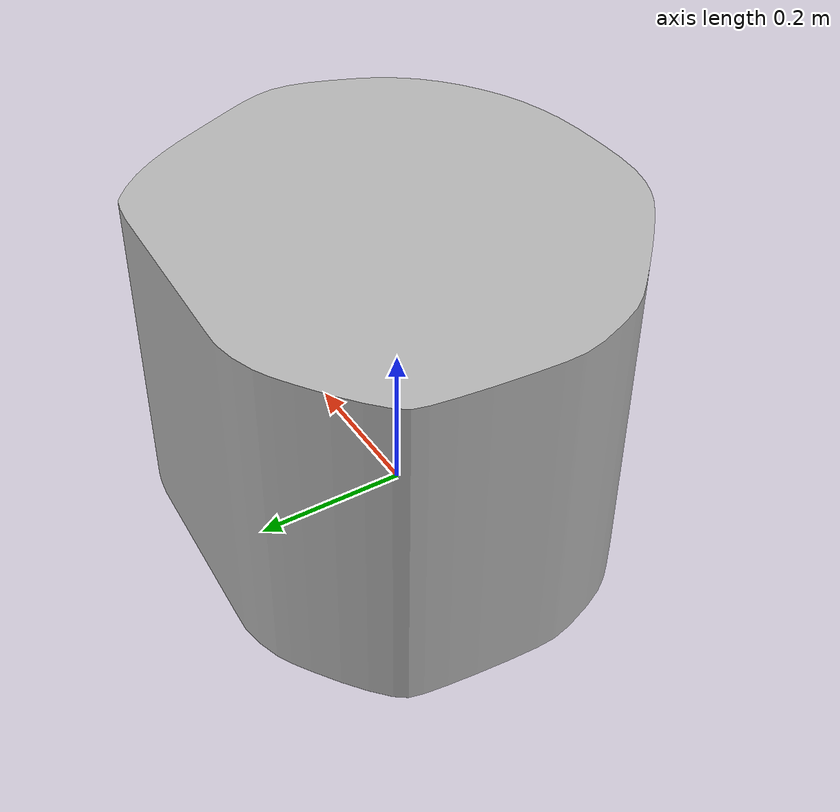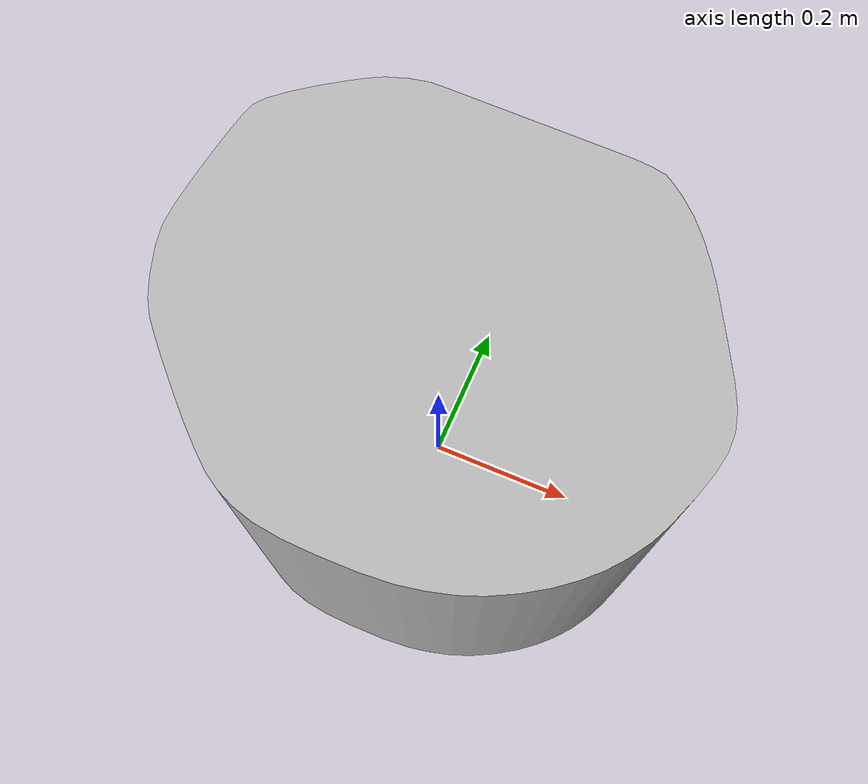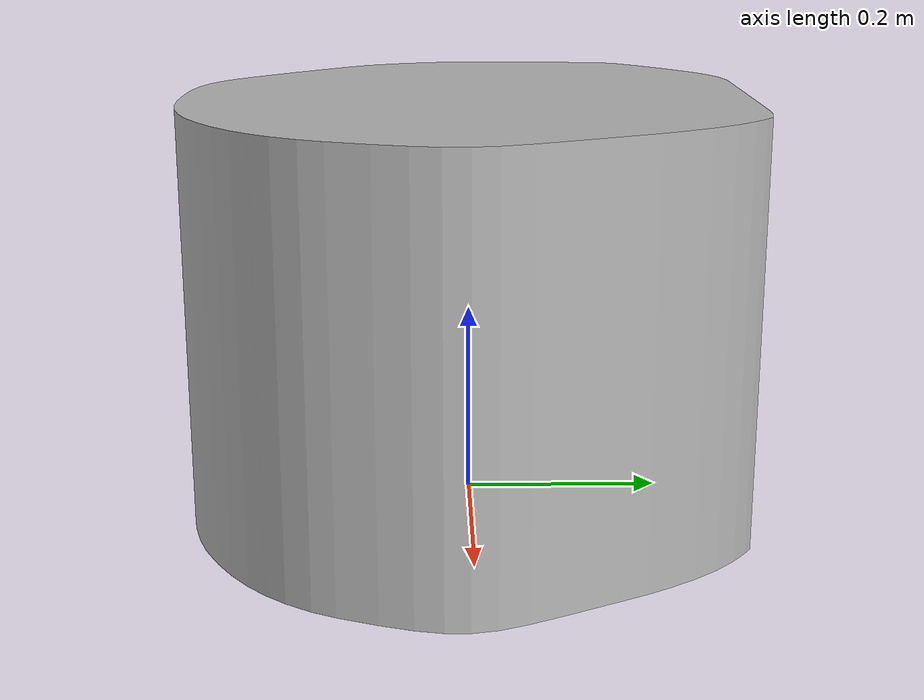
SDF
<?xml version="1.0"?>
<sdf version="1.6">
  <model name="rock_22">
    <static>true</static>
    <link name="link">

      <visual name="visual_glb">
        <pose>0 0 0 0 0 0</pose>
        <geometry>
          <mesh>
            <uri>meshes/22.glb</uri>
          </mesh>
        </geometry>
      </visual>

      <visual name="visual_collision">
        <pose>0 0 0 0 0 0</pose>
        <geometry>
          <mesh>
            <uri>meshes/22.stl</uri>
          </mesh>
        </geometry>
        <material>
            <ambient>1 1 1 1</ambient>
            <diffuse>1 1 1 1</diffuse>
            <specular>0.1 0.1 0.1 1</specular>
        </material>
        <transparency>1</transparency>
      </visual>

      <collision name="collision">
        <pose>0 0 0 0 0 0</pose>
        <geometry>
          <mesh>
            <uri>meshes/22.stl</uri>
          </mesh>
        </geometry>
      </collision>

    </link>
  </model>
</sdf>
